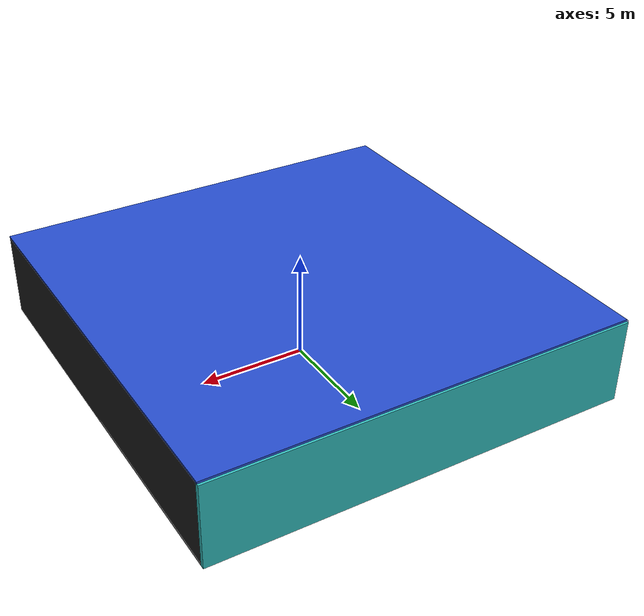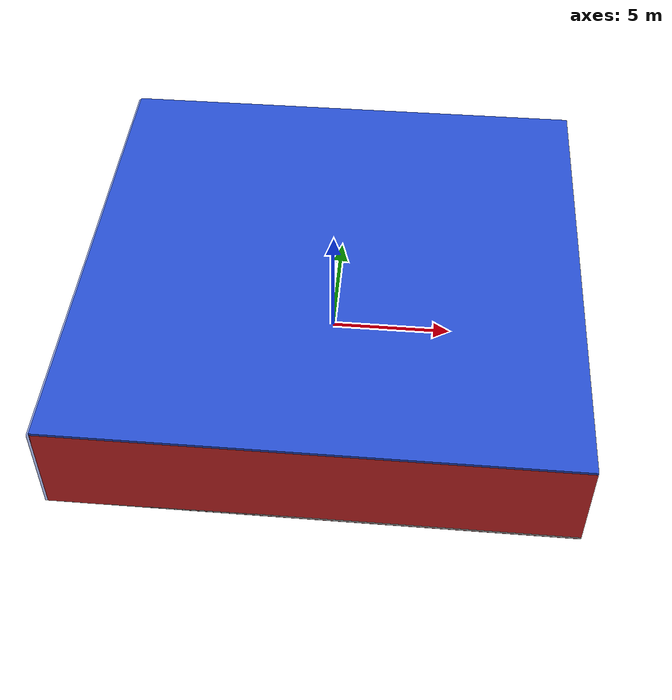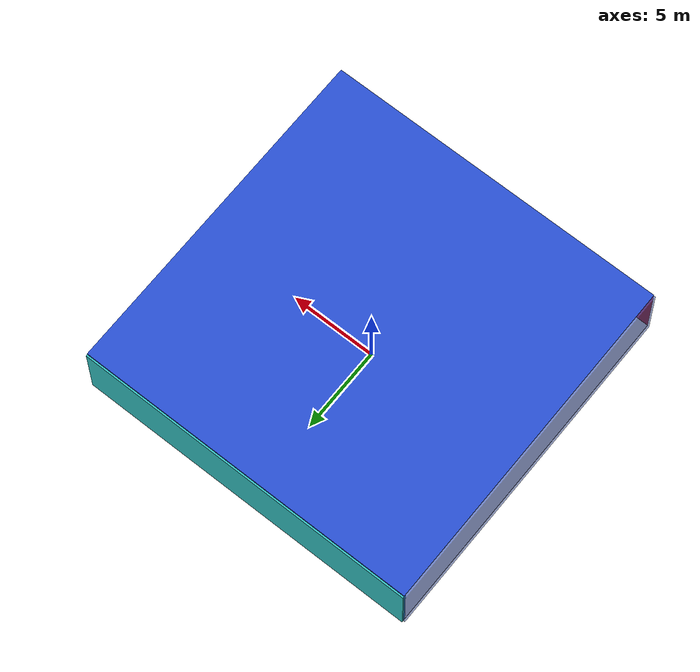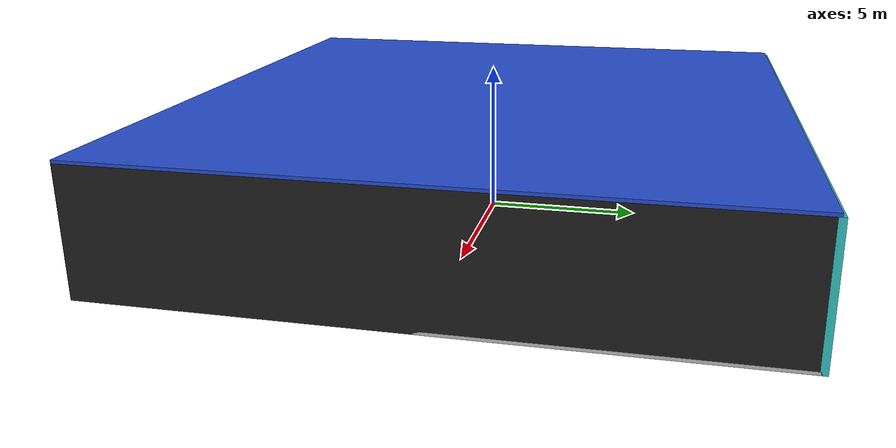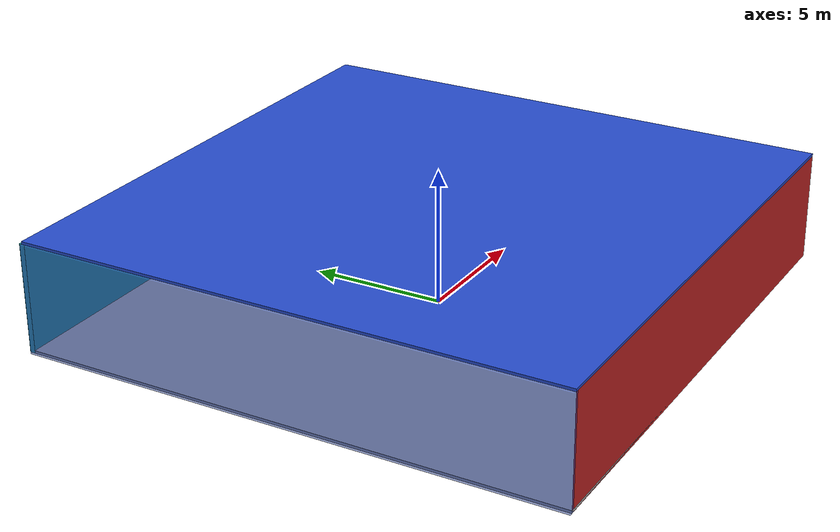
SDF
<sdf version="1.4">
 <world name="default">
  <physics type="ode">
   <max_step_size>0.001</max_step_size>
   <real_time_factor>1</real_time_factor>
   <real_time_update_rate>1000</real_time_update_rate>
   <gravity>0 0 -9.8</gravity>
  </physics>
  <scene><ambient>0.4 0.4 0.4 1</ambient><background>0.7 0.7 0.7 1</background><shadows>1</shadows></scene>
  <model name="Surrounding">
   <static>1</static>
   <link name="Ceiling">
    <collision name="Ceiling_Collision"><geometry><box><size>20 20 0.1</size></box></geometry></collision>
    <visual name="Ceiling_Visual">
     <geometry><box><size>20 20 0.1</size></box></geometry>
     <material>
      <script><uri>file://media/materials/scripts/gazebo.material</uri><name>Gazebo/BlueGlow</name></script>
     </material>
    </visual>
    <pose>0 0 4.05 0 0 0</pose>
   </link>
   <link name="Wall_South">
    <collision name="Wall_South_Collision">
     <geometry><box><size>20 0 4</size></box></geometry>
     <pose>0 0 2 0 -0 0</pose>
    </collision>
    <visual name="Wall_South_Visual">
     <pose>0 0 2 0 -0 0</pose>
     <geometry><box><size>20 0 4</size></box></geometry>
     <material>
      <script><uri>file://media/materials/scripts/gazebo.material</uri><name>Gazebo/Red</name></script>
     </material>
    </visual>
    <velocity_decay><linear>0</linear><angular>0</angular></velocity_decay>
    <pose>0 -10 0 0 -0 0</pose>
   </link>
   <link name="Wall_East">
    <collision name="Wall_21_Collision">
     <geometry><box><size>20 0 4</size></box></geometry>
     <pose>0 0 2 0 -0 0</pose>
    </collision>
    <visual name="Wall_21_Visual">
     <pose>0 0 2 0 -0 0</pose>
     <geometry><box><size>20 0 4</size></box></geometry>
     <material>
      <script><uri>file://media/materials/scripts/gazebo.material</uri><name>Gazebo/FlatBlack</name></script>
     </material>
    </visual>
    <velocity_decay><linear>0</linear><angular>0</angular></velocity_decay>
    <pose>10 0 0 0 -0 1.5708</pose>
   </link>
   <link name="Wall_North">
    <collision name="Wall_22_Collision">
     <geometry><box><size>20 0.2 4</size></box></geometry>
     <pose>0 0 2 0 -0 0</pose>
    </collision>
    <visual name="Wall_22_Visual">
     <pose>0 0 2 0 -0 0</pose>
     <geometry><box><size>20 0.2 4</size></box></geometry>
     <material>
      <script>
       <uri>file://media/materials/scripts/gazebo.material</uri>
       <name>Gazebo/TurquoiseGlowOutline</name>
      </script>
     </material>
    </visual>
    <velocity_decay><linear>0</linear><angular>0</angular></velocity_decay>
    <pose>0 10 0 0 -0 0</pose>
   </link>
   <link name="Wall_West">
    <collision name="Wall_23_Collision">
     <geometry><box><size>20 0.2 4</size></box></geometry>
     <pose>0 0 2 0 -0 0</pose>
    </collision>
    <visual name="Wall_23_Visual">
     <pose>0 0 2 0 -0 0</pose>
     <geometry><box><size>20 0.2 4</size></box></geometry>
     <material>
      <script><uri>file://media/materials/scripts/gazebo.material</uri><name>Gazebo/BlueTransparent</name></script>
     </material>
    </visual>
    <velocity_decay><linear>0</linear><angular>0</angular></velocity_decay>
    <pose>-10 0 0 0 0 -1.5708</pose>
   </link>
   <link name="Ground_link">
    <collision name="collision">
     <pose>0 0 .05 0 -0 0</pose>
     <geometry><box><size>20 20 0.1</size></box></geometry>
    </collision>
    <visual name="visual">
     <pose>0 0 .05 0 -0 0</pose>
     <geometry><box><size>20 20 0.1</size></box></geometry>
     <material>
      <script><uri>file://media/materials/scripts/gazebo.material</uri><name>Gazebo/Pioneer2Body</name></script>
     </material>
    </visual>
   </link>
   <static>1</static>
  </model>
  <spherical_coordinates>
   <surface_model>EARTH_WGS84</surface_model>
   <latitude_deg>0</latitude_deg>
   <longitude_deg>0</longitude_deg>
   <elevation>0</elevation>
   <heading_deg>0</heading_deg>
  </spherical_coordinates>
  <light name="lightball_0" type="diffuse">
   <diffuse>0.8 0.8 0.8 1</diffuse>
   <specular>0.2 0.2 0.2 1</specular>
   <attenuation>
    <range>100</range>
    <constant>0.7</constant>
    <linear>0.01</linear>
    <quadratic>0.001</quadratic>
   </attenuation>
   <direction>-0.5 0.1 -0.9</direction>
   <pose>7.50529658918 1.76842045159 2.22698826668 0 0 0</pose>
  </light>
  <light name="lightball_1" type="diffuse">
   <diffuse>0.8 0.8 0.8 1</diffuse>
   <specular>0.2 0.2 0.2 1</specular>
   <attenuation>
    <range>100</range>
    <constant>0.7</constant>
    <linear>0.01</linear>
    <quadratic>0.001</quadratic>
   </attenuation>
   <direction>-0.5 0.1 -0.9</direction>
   <pose>8.86727859799 -0.141608036185 3.68678887923 0 0 0</pose>
  </light>
  <include><uri>model://cabinet</uri><pose>-1.63166024899 2.17416537678 0 0 0 1.36303277971</pose></include>
  <include><uri>model://table</uri><pose>1.07836157604 -2.20631279948 0 0 0 3.03071667616</pose></include>
  <include><uri>model://cabinet</uri><pose>1.83993989012 3.86384950002 0 0 0 0.648869010737</pose></include>
  <include><uri>model://cabinet</uri><pose>5.58965780603 -8.02230202159 0 0 0 1.39829207644</pose></include>
  <include><uri>model://cabinet</uri><pose>6.90969827011 -1.06955758076 0 0 0 0.853076883371</pose></include>
 </world>
</sdf>

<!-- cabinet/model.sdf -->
<sdf version="1.5">
  <model name="cabinet">
    <static>true</static>
    <link name="cabinet_bottom_plate">
      <inertial>
        <pose>0 0 -1 0 0 0</pose>
        <inertia>
          <ixx>2.050000</ixx>
          <ixy>0</ixy>
          <ixz>0</ixz>
          <iyy>2.050000</iyy>
          <iyz>0</iyz>
          <izz>2.050000</izz>
        </inertia>
        <mass>25.000000</mass>
      </inertial>
      <collision name="cabinet_bottom_plate_geom">
        <pose>0 0 0.010000 0 0 0</pose>
        <geometry>
          <box>
            <size>0.450000 0.450000 0.020000</size>
          </box>
        </geometry>
      </collision>
      <visual name="cabinet_bottom_plate_geom_visual">
        <pose>0 0 0.010000 0 0 0</pose>
        <geometry>
          <box>
            <size>0.450000 0.450000 0.020000</size>
          </box>
        </geometry>
        <material>
          <script>
            <uri>model://media/materials/scripts/gazebo.material</uri>
            <name>Gazebo/Wood</name>
          </script>
        </material>
      </visual>
      <collision name="cabinet_bottom_plate_geom_cabinet_back_plate">
        <pose>0.235000 0 0.510000 0 0 0</pose>
        <geometry>
          <box>
            <size>0.020000 0.450000 1.020000</size>
          </box>
        </geometry>
      </collision>
      <visual name="cabinet_bottom_plate_geom_cabinet_back_plate_visual">
        <pose>0.235000 0 0.510000 0 0 0</pose>
        <geometry>
          <box>
            <size>0.020000 0.450000 1.020000</size>
          </box>
        </geometry>
        <material>
          <script>
            <uri>model://media/materials/scripts/gazebo.material</uri>
            <name>Gazebo/Wood</name>
          </script>
        </material>
      </visual>
      <collision name="cabinet_bottom_plate_geom_cabinet_left_plate">
        <pose>0 0.235000 0.510000 0 0 0</pose>
        <geometry>
          <box>
            <size>0.450000 0.020000 1.020000</size>
          </box>
        </geometry>
      </collision>
      <visual name="cabinet_bottom_plate_geom_cabinet_left_plate_visual">
        <pose>0 0.235000 0.510000 0 0 0</pose>
        <geometry>
          <box>
            <size>0.450000 0.020000 1.020000</size>
          </box>
        </geometry>
        <material>
          <script>
            <uri>model://media/materials/scripts/gazebo.material</uri>
            <name>Gazebo/Wood</name>
          </script>
        </material>
      </visual>
      <collision name="cabinet_bottom_plate_geom_cabinet_middle_plate">
        <pose>0 0 0.510000 0 0 0</pose>
        <geometry>
          <box>
            <size>0.450000 0.450000 0.020000</size>
          </box>
        </geometry>
      </collision>
      <visual name="cabinet_bottom_plate_geom_cabinet_middle_plate_visual">
        <pose>0 0 0.510000 0 0 0</pose>
        <geometry>
          <box>
            <size>0.450000 0.450000 0.020000</size>
          </box>
        </geometry>
        <material>
          <script>
            <uri>model://media/materials/scripts/gazebo.material</uri>
            <name>Gazebo/Wood</name>
          </script>
        </material>
      </visual>
      <collision name="cabinet_bottom_plate_geom_cabinet_right_plate">
        <pose>0 -0.235000 0.510000 0 0 0</pose>
        <geometry>
          <box>
            <size>0.450000 0.020000 1.020000</size>
          </box>
        </geometry>
      </collision>
      <visual name="cabinet_bottom_plate_geom_cabinet_right_plate_visual">
        <pose>0 -0.235000 0.510000 0 0 0</pose>
        <geometry>
          <box>
            <size>0.450000 0.020000 1.020000</size>
          </box>
        </geometry>
        <material>
          <script>
            <uri>model://media/materials/scripts/gazebo.material</uri>
            <name>Gazebo/Wood</name>
          </script>
        </material>
      </visual>
      <collision name="cabinet_bottom_plate_geom_cabinet_top_plate">
        <pose>0 0 1.010000 0 0 0</pose>
        <geometry>
          <box>
            <size>0.450000 0.450000 0.020000</size>
          </box>
        </geometry>
      </collision>
      <visual name="cabinet_bottom_plate_geom_cabinet_top_plate_visual">
        <pose>0 0 1.010000 0 0 0</pose>
        <geometry>
          <box>
            <size>0.450000 0.450000 0.020000</size>
          </box>
        </geometry>
        <material>
          <script>
            <uri>model://media/materials/scripts/gazebo.material</uri>
            <name>Gazebo/Wood</name>
          </script>
        </material>
      </visual>
    </link>
  </model>
</sdf>

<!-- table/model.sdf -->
<sdf version="1.5">
  <model name="table">
    <static>true</static>
    <link name="link">
      <collision name="surface">
        <pose>0 0 1.0 0 0 0</pose>
        <geometry>
          <box>
            <size>1.5 0.8 0.03</size>
          </box>
        </geometry>
        <surface>
          <friction>
            <ode>
              <mu>0.6</mu>
              <mu2>0.6</mu2>
            </ode>
          </friction>
        </surface>
      </collision>
      <visual name="visual1">
        <pose>0 0 1.0 0 0 0</pose>
        <geometry>
          <box>
            <size>1.5 0.8 0.03</size>
          </box>
        </geometry>
        <material>
          <script>
            <uri>model://media/materials/scripts/gazebo.material</uri>
            <name>Gazebo/Wood</name>
          </script>
        </material>
      </visual>
      <collision name="front_left_leg">
        <pose>0.68 0.38 0.5 0 0 0</pose>
        <geometry>
          <cylinder>
            <radius>0.02</radius>
            <length>1.0</length>
          </cylinder>
        </geometry>
      </collision>
      <visual name="front_left_leg">
        <pose>0.68 0.38 0.5 0 0 0</pose>
        <geometry>
          <cylinder>
            <radius>0.02</radius>
            <length>1.0</length>
          </cylinder>
        </geometry>
        <material>
          <script>
            <uri>model://media/materials/scripts/gazebo.material</uri>
            <name>Gazebo/Grey</name>
          </script>
        </material>
      </visual>
      <collision name="front_right_leg">
        <pose>0.68 -0.38 0.5 0 0 0</pose>
        <geometry>
          <cylinder>
            <radius>0.02</radius>
            <length>1.0</length>
          </cylinder>
        </geometry>
      </collision>
      <visual name="front_right_leg">
        <pose>0.68 -0.38 0.5 0 0 0</pose>
        <geometry>
          <cylinder>
            <radius>0.02</radius>
            <length>1.0</length>
          </cylinder>
        </geometry>
        <material>
          <script>
            <uri>model://media/materials/scripts/gazebo.material</uri>
            <name>Gazebo/Grey</name>
          </script>
        </material>
      </visual>
      <collision name="back_right_leg">
        <pose>-0.68 -0.38 0.5 0 0 0</pose>
        <geometry>
          <cylinder>
            <radius>0.02</radius>
            <length>1.0</length>
          </cylinder>
        </geometry>
      </collision>
      <visual name="back_right_leg">
        <pose>-0.68 -0.38 0.5 0 0 0</pose>
        <geometry>
          <cylinder>
            <radius>0.02</radius>
            <length>1.0</length>
          </cylinder>
        </geometry>
        <material>
          <script>
            <uri>model://media/materials/scripts/gazebo.material</uri>
            <name>Gazebo/Grey</name>
          </script>
        </material>
      </visual>
      <collision name="back_left_leg">
        <pose>-0.68 0.38 0.5 0 0 0</pose>
        <geometry>
          <cylinder>
            <radius>0.02</radius>
            <length>1.0</length>
          </cylinder>
        </geometry>
      </collision>
      <visual name="back_left_leg">
        <pose>-0.68 0.38 0.5 0 0 0</pose>
        <geometry>
          <cylinder>
            <radius>0.02</radius>
            <length>1.0</length>
          </cylinder>
        </geometry>
        <material>
          <script>
            <uri>model://media/materials/scripts/gazebo.material</uri>
            <name>Gazebo/Grey</name>
          </script>
        </material>
      </visual>
    </link>
  </model>
</sdf>
